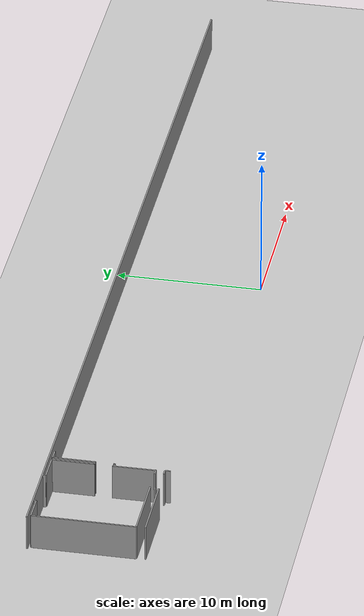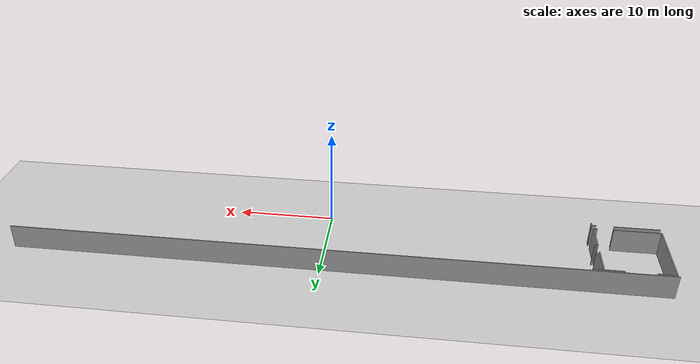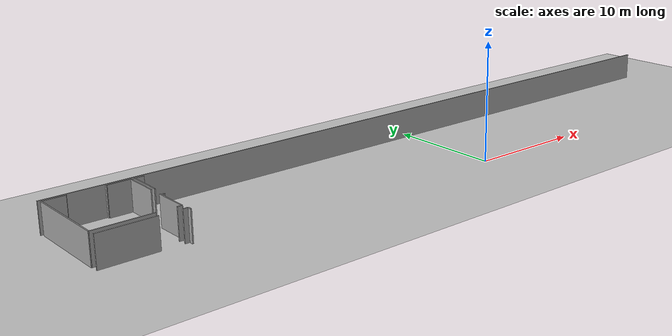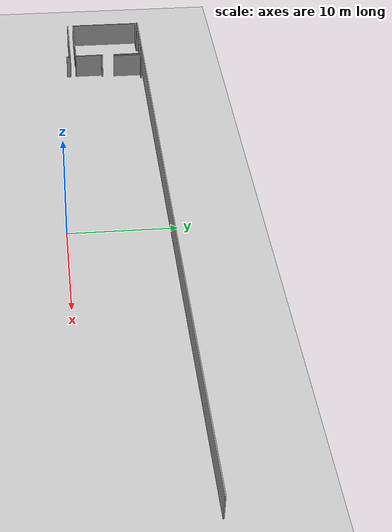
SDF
<sdf version="1.6">
 <world name="default">
  <model name="ground_plane">
   <static>1</static>
   <link name="link">
    <collision name="collision">
     <geometry><plane><normal>0 0 1</normal><size>100 100</size></plane></geometry>
     <surface><friction><ode><mu>100</mu><mu2>50</mu2></ode></friction></surface>
    </collision>
    <visual name="visual">
     <cast_shadows>0</cast_shadows>
     <geometry><plane><normal>0 0 1</normal><size>100 100</size></plane></geometry>
     <material>
      <script><uri>file://media/materials/scripts/gazebo.material</uri><name>Gazebo/Grey</name></script>
     </material>
    </visual>
   </link>
  </model>
  <model name="0510034841_A-40">
   <static>1</static>
   <link name="Wall_0">
    <collision name="Wall_0_Collision">
     <geometry><box><size>0.391235909414 0.1 2.5</size></box></geometry>
     <pose>0.195617954707 0 1.25 0 0 0</pose>
    </collision>
    <visual name="Wall_0_Visual">
     <pose>0.195617954707 0 1.25 0 0 0</pose>
     <geometry><box><size>0.391235909414 0.1 2.5</size></box></geometry>
     <material>
      <script><uri>file://media/materials/scripts/gazebo.material</uri><name>Gazebo/Grey</name></script>
      <ambient>1 1 1 1</ambient>
     </material>
    </visual>
    <pose>6.86668528486 -7.17820148269 0 0 0 3.14159265359</pose>
   </link>
   <link name="Wall_1">
    <collision name="Wall_1_Collision">
     <geometry><box><size>4.6958464507 0.1 2.5</size></box></geometry>
     <pose>2.34792322535 0 1.25 0 0 0</pose>
    </collision>
    <visual name="Wall_1_Visual">
     <pose>2.34792322535 0 1.25 0 0 0</pose>
     <geometry><box><size>4.6958464507 0.1 2.5</size></box></geometry>
     <material>
      <script><uri>file://media/materials/scripts/gazebo.material</uri><name>Gazebo/Grey</name></script>
      <ambient>1 1 1 1</ambient>
     </material>
    </visual>
    <pose>4.89603432518 -7.17820148269 0 0 0 3.14159265359</pose>
   </link>
   <link name="Wall_2">
    <collision name="Wall_2_Collision">
     <geometry><box><size>6.9532598761 0.1 2.5</size></box></geometry>
     <pose>3.47662993805 0 1.25 0 0 0</pose>
    </collision>
    <visual name="Wall_2_Visual">
     <pose>3.47662993805 0 1.25 0 0 0</pose>
     <geometry><box><size>6.9532598761 0.1 2.5</size></box></geometry>
     <material>
      <script><uri>file://media/materials/scripts/gazebo.material</uri><name>Gazebo/Grey</name></script>
      <ambient>1 1 1 1</ambient>
     </material>
    </visual>
    <pose>0.20018787448 -7.17820148269 0 0 0 1.57079632679</pose>
   </link>
   <link name="Wall_3">
    <collision name="Wall_3_Collision">
     <geometry><box><size>1.75675332589 0.1 2.5</size></box></geometry>
     <pose>0.878376662943 0 1.25 0 0 0</pose>
    </collision>
    <visual name="Wall_3_Visual">
     <pose>0.878376662943 0 1.25 0 0 0</pose>
     <geometry><box><size>1.75675332589 0.1 2.5</size></box></geometry>
     <material>
      <script><uri>file://media/materials/scripts/gazebo.material</uri><name>Gazebo/Grey</name></script>
      <ambient>1 1 1 1</ambient>
     </material>
    </visual>
    <pose>0.20018787448 -0.224941606581 0 0 0 0.0</pose>
   </link>
   <link name="Wall_4">
    <collision name="Wall_4_Collision">
     <geometry><box><size>0.191936630446 0.1 2.5</size></box></geometry>
     <pose>0.0959683152229 0 1.25 0 0 0</pose>
    </collision>
    <visual name="Wall_4_Visual">
     <pose>0.0959683152229 0 1.25 0 0 0</pose>
     <geometry><box><size>0.191936630446 0.1 2.5</size></box></geometry>
     <material>
      <script><uri>file://media/materials/scripts/gazebo.material</uri><name>Gazebo/Grey</name></script>
      <ambient>1 1 1 1</ambient>
     </material>
    </visual>
    <pose>1.95694120037 -0.224941606581 0 0 0 1.57079632679</pose>
   </link>
   <link name="Wall_5">
    <collision name="Wall_5_Collision">
     <geometry><box><size>0.202726718798 0.1 2.5</size></box></geometry>
     <pose>0.101363359399 0 1.25 0 0 0</pose>
    </collision>
    <visual name="Wall_5_Visual">
     <pose>0.101363359399 0 1.25 0 0 0</pose>
     <geometry><box><size>0.202726718798 0.1 2.5</size></box></geometry>
     <material>
      <script><uri>file://media/materials/scripts/gazebo.material</uri><name>Gazebo/Grey</name></script>
      <ambient>1 1 1 1</ambient>
     </material>
    </visual>
    <pose>4.97968924546 -0.0330049761349 0 0 0 -1.57079632679</pose>
   </link>
   <link name="Wall_6">
    <collision name="Wall_6_Collision">
     <geometry><box><size>1.86173453844 0.1 2.5</size></box></geometry>
     <pose>0.930867269219 0 1.25 0 0 0</pose>
    </collision>
    <visual name="Wall_6_Visual">
     <pose>0.930867269219 0 1.25 0 0 0</pose>
     <geometry><box><size>1.86173453844 0.1 2.5</size></box></geometry>
     <material>
      <script><uri>file://media/materials/scripts/gazebo.material</uri><name>Gazebo/Grey</name></script>
      <ambient>1 1 1 1</ambient>
     </material>
    </visual>
    <pose>4.97968924546 -0.235731694932 0 0 0 0.0</pose>
   </link>
   <link name="Wall_7">
    <collision name="Wall_7_Collision">
     <geometry><box><size>2.88806235402 0.1 2.5</size></box></geometry>
     <pose>1.44403117701 0 1.25 0 0 0</pose>
    </collision>
    <visual name="Wall_7_Visual">
     <pose>1.44403117701 0 1.25 0 0 0</pose>
     <geometry><box><size>2.88806235402 0.1 2.5</size></box></geometry>
     <material>
      <script><uri>file://media/materials/scripts/gazebo.material</uri><name>Gazebo/Grey</name></script>
      <ambient>1 1 1 1</ambient>
     </material>
    </visual>
    <pose>6.84142378389 -0.235731694932 0 0 0 -1.57079632679</pose>
   </link>
   <link name="Wall_8">
    <collision name="Wall_8_Collision">
     <geometry><box><size>2.88601489635 0.1 2.5</size></box></geometry>
     <pose>1.44300744818 0 1.25 0 0 0</pose>
    </collision>
    <visual name="Wall_8_Visual">
     <pose>1.44300744818 0 1.25 0 0 0</pose>
     <geometry><box><size>2.88601489635 0.1 2.5</size></box></geometry>
     <material>
      <script><uri>file://media/materials/scripts/gazebo.material</uri><name>Gazebo/Grey</name></script>
      <ambient>1 1 1 1</ambient>
     </material>
    </visual>
    <pose>6.84142378389 -4.29229714634 0 0 0 -1.56204314136</pose>
   </link>
   <link name="Wall_12">
    <collision name="Wall_12_Collision">
     <geometry><box><size>0.15029958363 0.1 2.5</size></box></geometry>
     <pose>0.0751497918148 0 1.25 0 0 0</pose>
    </collision>
    <visual name="Wall_12_Visual">
     <pose>0.0751497918148 0 1.25 0 0 0</pose>
     <geometry><box><size>0.15029958363 0.1 2.5</size></box></geometry>
     <material>
      <script><uri>file://media/materials/scripts/gazebo.material</uri><name>Gazebo/Grey</name></script>
      <ambient>1 1 1 1</ambient>
     </material>
    </visual>
    <pose>7.0984817711 -4.46506550218 0 0 0 1.57079632679</pose>
   </link>
   <link name="Wall_13">
    <collision name="Wall_13_Collision">
     <geometry><box><size>2.88691987407 0.1 2.5</size></box></geometry>
     <pose>1.44345993704 0 1.25 0 0 0</pose>
    </collision>
    <visual name="Wall_13_Visual">
     <pose>1.44345993704 0 1.25 0 0 0</pose>
     <geometry><box><size>2.88691987407 0.1 2.5</size></box></geometry>
     <material>
      <script><uri>file://media/materials/scripts/gazebo.material</uri><name>Gazebo/Grey</name></script>
      <ambient>1 1 1 1</ambient>
     </material>
    </visual>
    <pose>7.0984817711 -3.13394942622 0 0 0 1.57079632679</pose>
   </link>
   <link name="Wall_14">
    <collision name="Wall_14_Collision">
     <geometry><box><size>0.747816593886 0.1 2.5</size></box></geometry>
     <pose>0.373908296943 0 1.25 0 0 0</pose>
    </collision>
    <visual name="Wall_14_Visual">
     <pose>0.373908296943 0 1.25 0 0 0</pose>
     <geometry><box><size>0.747816593886 0.1 2.5</size></box></geometry>
     <material>
      <script><uri>file://media/materials/scripts/gazebo.material</uri><name>Gazebo/Grey</name></script>
      <ambient>1 1 1 1</ambient>
     </material>
    </visual>
    <pose>7.0984817711 -0.247029552148 0 0 0 0.0</pose>
   </link>
   <link name="Wall_29">
    <collision name="Wall_29_Collision">
     <geometry><box><size>4.55544835991 0.1 2.5</size></box></geometry>
     <pose>2.27772417995 0 1.25 0 0 0</pose>
    </collision>
    <visual name="Wall_29_Visual">
     <pose>2.27772417995 0 1.25 0 0 0</pose>
     <geometry><box><size>4.55544835991 0.1 2.5</size></box></geometry>
     <material>
      <script><uri>file://media/materials/scripts/gazebo.material</uri><name>Gazebo/Grey</name></script>
      <ambient>1 1 1 1</ambient>
     </material>
    </visual>
    <pose>0.227226566467 -7.7714024576 0 0 0 0.0</pose>
   </link>
   <link name="Wall_30">
    <collision name="Wall_30_Collision">
     <geometry><box><size>0.411673606174 0.1 2.5</size></box></geometry>
     <pose>0.205836803087 0 1.25 0 0 0</pose>
    </collision>
    <visual name="Wall_30_Visual">
     <pose>0.205836803087 0 1.25 0 0 0</pose>
     <geometry><box><size>0.411673606174 0.1 2.5</size></box></geometry>
     <material>
      <script><uri>file://media/materials/scripts/gazebo.material</uri><name>Gazebo/Grey</name></script>
      <ambient>1 1 1 1</ambient>
     </material>
    </visual>
    <pose>6.54564842084 -7.7714024576 0 0 0 0.0</pose>
   </link>
   <link name="Wall_31">
    <collision name="Wall_31_Collision">
     <geometry><box><size>0.378414745608 0.1 2.5</size></box></geometry>
     <pose>0.189207372804 0 1.25 0 0 0</pose>
    </collision>
    <visual name="Wall_31_Visual">
     <pose>0.189207372804 0 1.25 0 0 0</pose>
     <geometry><box><size>0.378414745608 0.1 2.5</size></box></geometry>
     <material>
      <script><uri>file://media/materials/scripts/gazebo.material</uri><name>Gazebo/Grey</name></script>
      <ambient>1 1 1 1</ambient>
     </material>
    </visual>
    <pose>6.95732202701 -7.7714024576 0 0 0 -1.57079632679</pose>
   </link>
   <link name="Wall_316">
    <collision name="Wall_316_Collision">
     <geometry><box><size>65.4689245455 0.1 2.5</size></box></geometry>
     <pose>32.7344622728 0 1.25 0 0 0</pose>
    </collision>
    <visual name="Wall_316_Visual">
     <pose>32.7344622728 0 1.25 0 0 0</pose>
     <geometry><box><size>65.4689245455 0.1 2.5</size></box></geometry>
     <material>
      <script><uri>file://media/materials/scripts/gazebo.material</uri><name>Gazebo/Grey</name></script>
      <ambient>1 1 1 1</ambient>
     </material>
    </visual>
   </link>
   <pose>-33.8 9.33765613893 0 0 0 0</pose>
  </model>
 </world>
</sdf>
